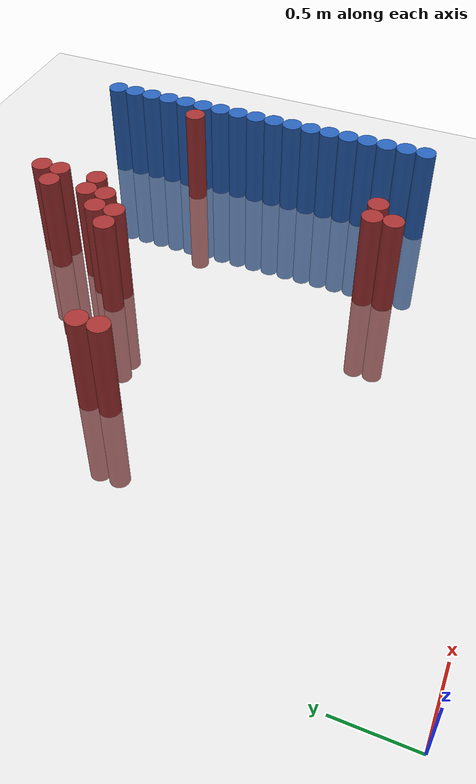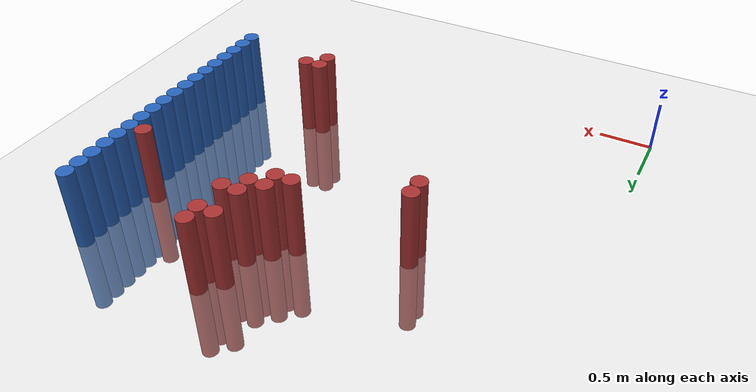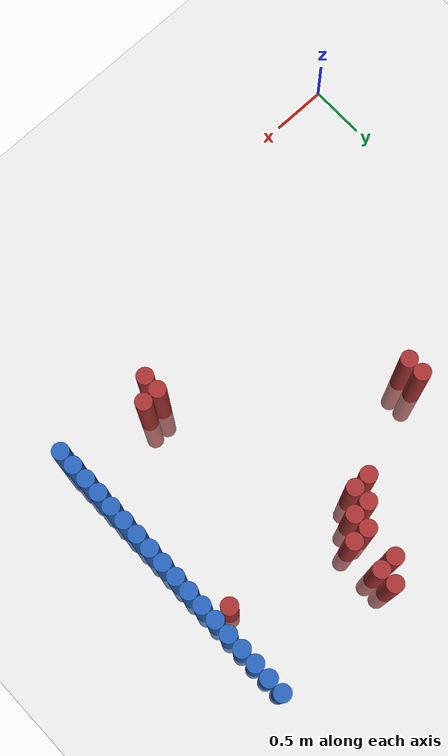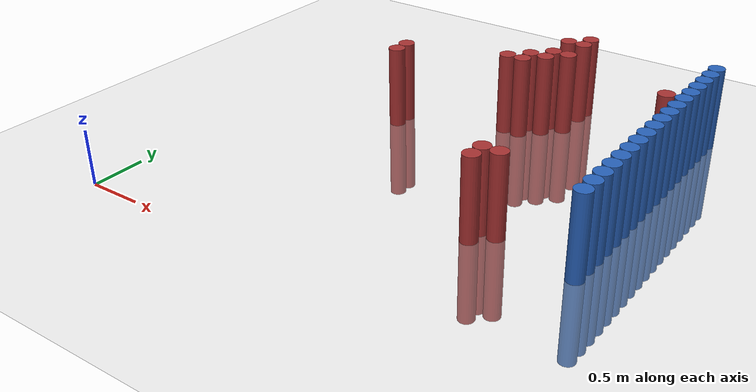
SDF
<sdf version="1.6">
 <world name="default">
  <model name="ground_plane">
   <static>1</static>
   <link name="link">
    <collision name="collision">
     <geometry><plane><normal>0 0 1</normal><size>100 100</size></plane></geometry>
     <surface><friction><ode><mu>100</mu><mu2>50</mu2></ode></friction></surface>
    </collision>
    <visual name="visual">
     <cast_shadows>0</cast_shadows>
     <geometry><plane><normal>0 0 1</normal><size>100 100</size></plane></geometry>
     <material>
      <script><uri>file://media/materials/scripts/gazebo.material</uri><name>Gazebo/Grey</name></script>
     </material>
    </visual>
   </link>
  </model>
  <model name="unit_cylinder_128">
   <static>1</static>
   <pose>3.925000 1.075000 0.000000 0.000000 0.000000 0.000000</pose>
   <link name="link">
    <inertial>
     <mass>1</mass>
     <inertia><ixx>0.145833</ixx><ixy>0</ixy><ixz>0</ixz><iyy>0.145833</iyy><iyz>0</iyz><izz>0.125</izz></inertia>
    </inertial>
    <collision name="collision">
     <geometry><cylinder><radius>0.075000</radius><length>1.5</length></cylinder></geometry>
    </collision>
    <visual name="visual">
     <geometry><cylinder><radius>0.075000</radius><length>1.5</length></cylinder></geometry>
     <material>
      <ambient>0.152000 0.379000 0.720000 1</ambient>
      <diffuse>0.152000 0.379000 0.720000 1</diffuse>
     </material>
     <material>
      <script><name>Gazebo/Grey</name><uri>file://media/materials/scripts/gazebo.material</uri></script>
     </material>
    </visual>
   </link>
  </model>
  <model name="unit_cylinder_130">
   <static>1</static>
   <pose>3.925000 1.225000 0.000000 0.000000 0.000000 0.000000</pose>
   <link name="link">
    <inertial>
     <mass>1</mass>
     <inertia><ixx>0.145833</ixx><ixy>0</ixy><ixz>0</ixz><iyy>0.145833</iyy><iyz>0</iyz><izz>0.125</izz></inertia>
    </inertial>
    <collision name="collision">
     <geometry><cylinder><radius>0.075000</radius><length>1.5</length></cylinder></geometry>
    </collision>
    <visual name="visual">
     <geometry><cylinder><radius>0.075000</radius><length>1.5</length></cylinder></geometry>
     <material>
      <ambient>0.152000 0.379000 0.720000 1</ambient>
      <diffuse>0.152000 0.379000 0.720000 1</diffuse>
     </material>
     <material>
      <script><name>Gazebo/Grey</name><uri>file://media/materials/scripts/gazebo.material</uri></script>
     </material>
    </visual>
   </link>
  </model>
  <model name="unit_cylinder_132">
   <static>1</static>
   <pose>3.925000 1.375000 0.000000 0.000000 0.000000 0.000000</pose>
   <link name="link">
    <inertial>
     <mass>1</mass>
     <inertia><ixx>0.145833</ixx><ixy>0</ixy><ixz>0</ixz><iyy>0.145833</iyy><iyz>0</iyz><izz>0.125</izz></inertia>
    </inertial>
    <collision name="collision">
     <geometry><cylinder><radius>0.075000</radius><length>1.5</length></cylinder></geometry>
    </collision>
    <visual name="visual">
     <geometry><cylinder><radius>0.075000</radius><length>1.5</length></cylinder></geometry>
     <material>
      <ambient>0.152000 0.379000 0.720000 1</ambient>
      <diffuse>0.152000 0.379000 0.720000 1</diffuse>
     </material>
     <material>
      <script><name>Gazebo/Grey</name><uri>file://media/materials/scripts/gazebo.material</uri></script>
     </material>
    </visual>
   </link>
  </model>
  <model name="unit_cylinder_134">
   <static>1</static>
   <pose>3.925000 1.525000 0.000000 0.000000 0.000000 0.000000</pose>
   <link name="link">
    <inertial>
     <mass>1</mass>
     <inertia><ixx>0.145833</ixx><ixy>0</ixy><ixz>0</ixz><iyy>0.145833</iyy><iyz>0</iyz><izz>0.125</izz></inertia>
    </inertial>
    <collision name="collision">
     <geometry><cylinder><radius>0.075000</radius><length>1.5</length></cylinder></geometry>
    </collision>
    <visual name="visual">
     <geometry><cylinder><radius>0.075000</radius><length>1.5</length></cylinder></geometry>
     <material>
      <ambient>0.152000 0.379000 0.720000 1</ambient>
      <diffuse>0.152000 0.379000 0.720000 1</diffuse>
     </material>
     <material>
      <script><name>Gazebo/Grey</name><uri>file://media/materials/scripts/gazebo.material</uri></script>
     </material>
    </visual>
   </link>
  </model>
  <model name="unit_cylinder_136">
   <static>1</static>
   <pose>3.925000 1.675000 0.000000 0.000000 0.000000 0.000000</pose>
   <link name="link">
    <inertial>
     <mass>1</mass>
     <inertia><ixx>0.145833</ixx><ixy>0</ixy><ixz>0</ixz><iyy>0.145833</iyy><iyz>0</iyz><izz>0.125</izz></inertia>
    </inertial>
    <collision name="collision">
     <geometry><cylinder><radius>0.075000</radius><length>1.5</length></cylinder></geometry>
    </collision>
    <visual name="visual">
     <geometry><cylinder><radius>0.075000</radius><length>1.5</length></cylinder></geometry>
     <material>
      <ambient>0.152000 0.379000 0.720000 1</ambient>
      <diffuse>0.152000 0.379000 0.720000 1</diffuse>
     </material>
     <material>
      <script><name>Gazebo/Grey</name><uri>file://media/materials/scripts/gazebo.material</uri></script>
     </material>
    </visual>
   </link>
  </model>
  <model name="unit_cylinder_138">
   <static>1</static>
   <pose>3.925000 1.825000 0.000000 0.000000 0.000000 0.000000</pose>
   <link name="link">
    <inertial>
     <mass>1</mass>
     <inertia><ixx>0.145833</ixx><ixy>0</ixy><ixz>0</ixz><iyy>0.145833</iyy><iyz>0</iyz><izz>0.125</izz></inertia>
    </inertial>
    <collision name="collision">
     <geometry><cylinder><radius>0.075000</radius><length>1.5</length></cylinder></geometry>
    </collision>
    <visual name="visual">
     <geometry><cylinder><radius>0.075000</radius><length>1.5</length></cylinder></geometry>
     <material>
      <ambient>0.152000 0.379000 0.720000 1</ambient>
      <diffuse>0.152000 0.379000 0.720000 1</diffuse>
     </material>
     <material>
      <script><name>Gazebo/Grey</name><uri>file://media/materials/scripts/gazebo.material</uri></script>
     </material>
    </visual>
   </link>
  </model>
  <model name="unit_cylinder_140">
   <static>1</static>
   <pose>3.925000 1.975000 0.000000 0.000000 0.000000 0.000000</pose>
   <link name="link">
    <inertial>
     <mass>1</mass>
     <inertia><ixx>0.145833</ixx><ixy>0</ixy><ixz>0</ixz><iyy>0.145833</iyy><iyz>0</iyz><izz>0.125</izz></inertia>
    </inertial>
    <collision name="collision">
     <geometry><cylinder><radius>0.075000</radius><length>1.5</length></cylinder></geometry>
    </collision>
    <visual name="visual">
     <geometry><cylinder><radius>0.075000</radius><length>1.5</length></cylinder></geometry>
     <material>
      <ambient>0.152000 0.379000 0.720000 1</ambient>
      <diffuse>0.152000 0.379000 0.720000 1</diffuse>
     </material>
     <material>
      <script><name>Gazebo/Grey</name><uri>file://media/materials/scripts/gazebo.material</uri></script>
     </material>
    </visual>
   </link>
  </model>
  <model name="unit_cylinder_142">
   <static>1</static>
   <pose>3.925000 2.125000 0.000000 0.000000 0.000000 0.000000</pose>
   <link name="link">
    <inertial>
     <mass>1</mass>
     <inertia><ixx>0.145833</ixx><ixy>0</ixy><ixz>0</ixz><iyy>0.145833</iyy><iyz>0</iyz><izz>0.125</izz></inertia>
    </inertial>
    <collision name="collision">
     <geometry><cylinder><radius>0.075000</radius><length>1.5</length></cylinder></geometry>
    </collision>
    <visual name="visual">
     <geometry><cylinder><radius>0.075000</radius><length>1.5</length></cylinder></geometry>
     <material>
      <ambient>0.152000 0.379000 0.720000 1</ambient>
      <diffuse>0.152000 0.379000 0.720000 1</diffuse>
     </material>
     <material>
      <script><name>Gazebo/Grey</name><uri>file://media/materials/scripts/gazebo.material</uri></script>
     </material>
    </visual>
   </link>
  </model>
  <model name="unit_cylinder_144">
   <static>1</static>
   <pose>3.925000 2.275000 0.000000 0.000000 0.000000 0.000000</pose>
   <link name="link">
    <inertial>
     <mass>1</mass>
     <inertia><ixx>0.145833</ixx><ixy>0</ixy><ixz>0</ixz><iyy>0.145833</iyy><iyz>0</iyz><izz>0.125</izz></inertia>
    </inertial>
    <collision name="collision">
     <geometry><cylinder><radius>0.075000</radius><length>1.5</length></cylinder></geometry>
    </collision>
    <visual name="visual">
     <geometry><cylinder><radius>0.075000</radius><length>1.5</length></cylinder></geometry>
     <material>
      <ambient>0.152000 0.379000 0.720000 1</ambient>
      <diffuse>0.152000 0.379000 0.720000 1</diffuse>
     </material>
     <material>
      <script><name>Gazebo/Grey</name><uri>file://media/materials/scripts/gazebo.material</uri></script>
     </material>
    </visual>
   </link>
  </model>
  <model name="unit_cylinder_146">
   <static>1</static>
   <pose>3.925000 2.425000 0.000000 0.000000 0.000000 0.000000</pose>
   <link name="link">
    <inertial>
     <mass>1</mass>
     <inertia><ixx>0.145833</ixx><ixy>0</ixy><ixz>0</ixz><iyy>0.145833</iyy><iyz>0</iyz><izz>0.125</izz></inertia>
    </inertial>
    <collision name="collision">
     <geometry><cylinder><radius>0.075000</radius><length>1.5</length></cylinder></geometry>
    </collision>
    <visual name="visual">
     <geometry><cylinder><radius>0.075000</radius><length>1.5</length></cylinder></geometry>
     <material>
      <ambient>0.152000 0.379000 0.720000 1</ambient>
      <diffuse>0.152000 0.379000 0.720000 1</diffuse>
     </material>
     <material>
      <script><name>Gazebo/Grey</name><uri>file://media/materials/scripts/gazebo.material</uri></script>
     </material>
    </visual>
   </link>
  </model>
  <model name="unit_cylinder_148">
   <static>1</static>
   <pose>3.925000 2.575000 0.000000 0.000000 0.000000 0.000000</pose>
   <link name="link">
    <inertial>
     <mass>1</mass>
     <inertia><ixx>0.145833</ixx><ixy>0</ixy><ixz>0</ixz><iyy>0.145833</iyy><iyz>0</iyz><izz>0.125</izz></inertia>
    </inertial>
    <collision name="collision">
     <geometry><cylinder><radius>0.075000</radius><length>1.5</length></cylinder></geometry>
    </collision>
    <visual name="visual">
     <geometry><cylinder><radius>0.075000</radius><length>1.5</length></cylinder></geometry>
     <material>
      <ambient>0.152000 0.379000 0.720000 1</ambient>
      <diffuse>0.152000 0.379000 0.720000 1</diffuse>
     </material>
     <material>
      <script><name>Gazebo/Grey</name><uri>file://media/materials/scripts/gazebo.material</uri></script>
     </material>
    </visual>
   </link>
  </model>
  <model name="unit_cylinder_150">
   <static>1</static>
   <pose>3.925000 2.725000 0.000000 0.000000 0.000000 0.000000</pose>
   <link name="link">
    <inertial>
     <mass>1</mass>
     <inertia><ixx>0.145833</ixx><ixy>0</ixy><ixz>0</ixz><iyy>0.145833</iyy><iyz>0</iyz><izz>0.125</izz></inertia>
    </inertial>
    <collision name="collision">
     <geometry><cylinder><radius>0.075000</radius><length>1.5</length></cylinder></geometry>
    </collision>
    <visual name="visual">
     <geometry><cylinder><radius>0.075000</radius><length>1.5</length></cylinder></geometry>
     <material>
      <ambient>0.152000 0.379000 0.720000 1</ambient>
      <diffuse>0.152000 0.379000 0.720000 1</diffuse>
     </material>
     <material>
      <script><name>Gazebo/Grey</name><uri>file://media/materials/scripts/gazebo.material</uri></script>
     </material>
    </visual>
   </link>
  </model>
  <model name="unit_cylinder_152">
   <static>1</static>
   <pose>3.925000 2.875000 0.000000 0.000000 0.000000 0.000000</pose>
   <link name="link">
    <inertial>
     <mass>1</mass>
     <inertia><ixx>0.145833</ixx><ixy>0</ixy><ixz>0</ixz><iyy>0.145833</iyy><iyz>0</iyz><izz>0.125</izz></inertia>
    </inertial>
    <collision name="collision">
     <geometry><cylinder><radius>0.075000</radius><length>1.5</length></cylinder></geometry>
    </collision>
    <visual name="visual">
     <geometry><cylinder><radius>0.075000</radius><length>1.5</length></cylinder></geometry>
     <material>
      <ambient>0.152000 0.379000 0.720000 1</ambient>
      <diffuse>0.152000 0.379000 0.720000 1</diffuse>
     </material>
     <material>
      <script><name>Gazebo/Grey</name><uri>file://media/materials/scripts/gazebo.material</uri></script>
     </material>
    </visual>
   </link>
  </model>
  <model name="unit_cylinder_154">
   <static>1</static>
   <pose>3.925000 3.025000 0.000000 0.000000 0.000000 0.000000</pose>
   <link name="link">
    <inertial>
     <mass>1</mass>
     <inertia><ixx>0.145833</ixx><ixy>0</ixy><ixz>0</ixz><iyy>0.145833</iyy><iyz>0</iyz><izz>0.125</izz></inertia>
    </inertial>
    <collision name="collision">
     <geometry><cylinder><radius>0.075000</radius><length>1.5</length></cylinder></geometry>
    </collision>
    <visual name="visual">
     <geometry><cylinder><radius>0.075000</radius><length>1.5</length></cylinder></geometry>
     <material>
      <ambient>0.152000 0.379000 0.720000 1</ambient>
      <diffuse>0.152000 0.379000 0.720000 1</diffuse>
     </material>
     <material>
      <script><name>Gazebo/Grey</name><uri>file://media/materials/scripts/gazebo.material</uri></script>
     </material>
    </visual>
   </link>
  </model>
  <model name="unit_cylinder_156">
   <static>1</static>
   <pose>3.925000 3.175000 0.000000 0.000000 0.000000 0.000000</pose>
   <link name="link">
    <inertial>
     <mass>1</mass>
     <inertia><ixx>0.145833</ixx><ixy>0</ixy><ixz>0</ixz><iyy>0.145833</iyy><iyz>0</iyz><izz>0.125</izz></inertia>
    </inertial>
    <collision name="collision">
     <geometry><cylinder><radius>0.075000</radius><length>1.5</length></cylinder></geometry>
    </collision>
    <visual name="visual">
     <geometry><cylinder><radius>0.075000</radius><length>1.5</length></cylinder></geometry>
     <material>
      <ambient>0.152000 0.379000 0.720000 1</ambient>
      <diffuse>0.152000 0.379000 0.720000 1</diffuse>
     </material>
     <material>
      <script><name>Gazebo/Grey</name><uri>file://media/materials/scripts/gazebo.material</uri></script>
     </material>
    </visual>
   </link>
  </model>
  <model name="unit_cylinder_158">
   <static>1</static>
   <pose>3.925000 3.325000 0.000000 0.000000 0.000000 0.000000</pose>
   <link name="link">
    <inertial>
     <mass>1</mass>
     <inertia><ixx>0.145833</ixx><ixy>0</ixy><ixz>0</ixz><iyy>0.145833</iyy><iyz>0</iyz><izz>0.125</izz></inertia>
    </inertial>
    <collision name="collision">
     <geometry><cylinder><radius>0.075000</radius><length>1.5</length></cylinder></geometry>
    </collision>
    <visual name="visual">
     <geometry><cylinder><radius>0.075000</radius><length>1.5</length></cylinder></geometry>
     <material>
      <ambient>0.152000 0.379000 0.720000 1</ambient>
      <diffuse>0.152000 0.379000 0.720000 1</diffuse>
     </material>
     <material>
      <script><name>Gazebo/Grey</name><uri>file://media/materials/scripts/gazebo.material</uri></script>
     </material>
    </visual>
   </link>
  </model>
  <model name="unit_cylinder_160">
   <static>1</static>
   <pose>3.925000 3.475000 0.000000 0.000000 0.000000 0.000000</pose>
   <link name="link">
    <inertial>
     <mass>1</mass>
     <inertia><ixx>0.145833</ixx><ixy>0</ixy><ixz>0</ixz><iyy>0.145833</iyy><iyz>0</iyz><izz>0.125</izz></inertia>
    </inertial>
    <collision name="collision">
     <geometry><cylinder><radius>0.075000</radius><length>1.5</length></cylinder></geometry>
    </collision>
    <visual name="visual">
     <geometry><cylinder><radius>0.075000</radius><length>1.5</length></cylinder></geometry>
     <material>
      <ambient>0.152000 0.379000 0.720000 1</ambient>
      <diffuse>0.152000 0.379000 0.720000 1</diffuse>
     </material>
     <material>
      <script><name>Gazebo/Grey</name><uri>file://media/materials/scripts/gazebo.material</uri></script>
     </material>
    </visual>
   </link>
  </model>
  <model name="unit_cylinder_162">
   <static>1</static>
   <pose>3.925000 3.625000 0.000000 0.000000 0.000000 0.000000</pose>
   <link name="link">
    <inertial>
     <mass>1</mass>
     <inertia><ixx>0.145833</ixx><ixy>0</ixy><ixz>0</ixz><iyy>0.145833</iyy><iyz>0</iyz><izz>0.125</izz></inertia>
    </inertial>
    <collision name="collision">
     <geometry><cylinder><radius>0.075000</radius><length>1.5</length></cylinder></geometry>
    </collision>
    <visual name="visual">
     <geometry><cylinder><radius>0.075000</radius><length>1.5</length></cylinder></geometry>
     <material>
      <ambient>0.152000 0.379000 0.720000 1</ambient>
      <diffuse>0.152000 0.379000 0.720000 1</diffuse>
     </material>
     <material>
      <script><name>Gazebo/Grey</name><uri>file://media/materials/scripts/gazebo.material</uri></script>
     </material>
    </visual>
   </link>
  </model>
  <model name="unit_cylinder_389">
   <static>1</static>
   <pose>1.375000 2.425000 0.000000 0.000000 0.000000 0.000000</pose>
   <link name="link">
    <inertial>
     <mass>1</mass>
     <inertia><ixx>0.145833</ixx><ixy>0</ixy><ixz>0</ixz><iyy>0.145833</iyy><iyz>0</iyz><izz>0.125</izz></inertia>
    </inertial>
    <collision name="collision">
     <geometry><cylinder><radius>0.075000</radius><length>1.5</length></cylinder></geometry>
    </collision>
    <visual name="visual">
     <geometry><cylinder><radius>0.075000</radius><length>1.5</length></cylinder></geometry>
     <material>
      <ambient>0.648000 0.192000 0.192000 1</ambient>
      <diffuse>0.648000 0.192000 0.192000 1</diffuse>
     </material>
     <material>
      <script><name>Gazebo/Grey</name><uri>file://media/materials/scripts/gazebo.material</uri></script>
     </material>
    </visual>
   </link>
  </model>
  <model name="unit_cylinder_390">
   <static>1</static>
   <pose>1.375000 2.575000 0.000000 0.000000 0.000000 0.000000</pose>
   <link name="link">
    <inertial>
     <mass>1</mass>
     <inertia><ixx>0.145833</ixx><ixy>0</ixy><ixz>0</ixz><iyy>0.145833</iyy><iyz>0</iyz><izz>0.125</izz></inertia>
    </inertial>
    <collision name="collision">
     <geometry><cylinder><radius>0.075000</radius><length>1.5</length></cylinder></geometry>
    </collision>
    <visual name="visual">
     <geometry><cylinder><radius>0.075000</radius><length>1.5</length></cylinder></geometry>
     <material>
      <ambient>0.648000 0.192000 0.192000 1</ambient>
      <diffuse>0.648000 0.192000 0.192000 1</diffuse>
     </material>
     <material>
      <script><name>Gazebo/Grey</name><uri>file://media/materials/scripts/gazebo.material</uri></script>
     </material>
    </visual>
   </link>
  </model>
  <model name="unit_cylinder_395">
   <static>1</static>
   <pose>2.275000 2.875000 0.000000 0.000000 0.000000 0.000000</pose>
   <link name="link">
    <inertial>
     <mass>1</mass>
     <inertia><ixx>0.145833</ixx><ixy>0</ixy><ixz>0</ixz><iyy>0.145833</iyy><iyz>0</iyz><izz>0.125</izz></inertia>
    </inertial>
    <collision name="collision">
     <geometry><cylinder><radius>0.075000</radius><length>1.5</length></cylinder></geometry>
    </collision>
    <visual name="visual">
     <geometry><cylinder><radius>0.075000</radius><length>1.5</length></cylinder></geometry>
     <material>
      <ambient>0.648000 0.192000 0.192000 1</ambient>
      <diffuse>0.648000 0.192000 0.192000 1</diffuse>
     </material>
     <material>
      <script><name>Gazebo/Grey</name><uri>file://media/materials/scripts/gazebo.material</uri></script>
     </material>
    </visual>
   </link>
  </model>
  <model name="unit_cylinder_402">
   <static>1</static>
   <pose>2.425000 2.875000 0.000000 0.000000 0.000000 0.000000</pose>
   <link name="link">
    <inertial>
     <mass>1</mass>
     <inertia><ixx>0.145833</ixx><ixy>0</ixy><ixz>0</ixz><iyy>0.145833</iyy><iyz>0</iyz><izz>0.125</izz></inertia>
    </inertial>
    <collision name="collision">
     <geometry><cylinder><radius>0.075000</radius><length>1.5</length></cylinder></geometry>
    </collision>
    <visual name="visual">
     <geometry><cylinder><radius>0.075000</radius><length>1.5</length></cylinder></geometry>
     <material>
      <ambient>0.648000 0.192000 0.192000 1</ambient>
      <diffuse>0.648000 0.192000 0.192000 1</diffuse>
     </material>
     <material>
      <script><name>Gazebo/Grey</name><uri>file://media/materials/scripts/gazebo.material</uri></script>
     </material>
    </visual>
   </link>
  </model>
  <model name="unit_cylinder_403">
   <static>1</static>
   <pose>2.425000 3.025000 0.000000 0.000000 0.000000 0.000000</pose>
   <link name="link">
    <inertial>
     <mass>1</mass>
     <inertia><ixx>0.145833</ixx><ixy>0</ixy><ixz>0</ixz><iyy>0.145833</iyy><iyz>0</iyz><izz>0.125</izz></inertia>
    </inertial>
    <collision name="collision">
     <geometry><cylinder><radius>0.075000</radius><length>1.5</length></cylinder></geometry>
    </collision>
    <visual name="visual">
     <geometry><cylinder><radius>0.075000</radius><length>1.5</length></cylinder></geometry>
     <material>
      <ambient>0.648000 0.192000 0.192000 1</ambient>
      <diffuse>0.648000 0.192000 0.192000 1</diffuse>
     </material>
     <material>
      <script><name>Gazebo/Grey</name><uri>file://media/materials/scripts/gazebo.material</uri></script>
     </material>
    </visual>
   </link>
  </model>
  <model name="unit_cylinder_407">
   <static>1</static>
   <pose>2.575000 3.025000 0.000000 0.000000 0.000000 0.000000</pose>
   <link name="link">
    <inertial>
     <mass>1</mass>
     <inertia><ixx>0.145833</ixx><ixy>0</ixy><ixz>0</ixz><iyy>0.145833</iyy><iyz>0</iyz><izz>0.125</izz></inertia>
    </inertial>
    <collision name="collision">
     <geometry><cylinder><radius>0.075000</radius><length>1.5</length></cylinder></geometry>
    </collision>
    <visual name="visual">
     <geometry><cylinder><radius>0.075000</radius><length>1.5</length></cylinder></geometry>
     <material>
      <ambient>0.648000 0.192000 0.192000 1</ambient>
      <diffuse>0.648000 0.192000 0.192000 1</diffuse>
     </material>
     <material>
      <script><name>Gazebo/Grey</name><uri>file://media/materials/scripts/gazebo.material</uri></script>
     </material>
    </visual>
   </link>
  </model>
  <model name="unit_cylinder_408">
   <static>1</static>
   <pose>2.575000 3.175000 0.000000 0.000000 0.000000 0.000000</pose>
   <link name="link">
    <inertial>
     <mass>1</mass>
     <inertia><ixx>0.145833</ixx><ixy>0</ixy><ixz>0</ixz><iyy>0.145833</iyy><iyz>0</iyz><izz>0.125</izz></inertia>
    </inertial>
    <collision name="collision">
     <geometry><cylinder><radius>0.075000</radius><length>1.5</length></cylinder></geometry>
    </collision>
    <visual name="visual">
     <geometry><cylinder><radius>0.075000</radius><length>1.5</length></cylinder></geometry>
     <material>
      <ambient>0.648000 0.192000 0.192000 1</ambient>
      <diffuse>0.648000 0.192000 0.192000 1</diffuse>
     </material>
     <material>
      <script><name>Gazebo/Grey</name><uri>file://media/materials/scripts/gazebo.material</uri></script>
     </material>
    </visual>
   </link>
  </model>
  <model name="unit_cylinder_409">
   <static>1</static>
   <pose>2.575000 3.475000 0.000000 0.000000 0.000000 0.000000</pose>
   <link name="link">
    <inertial>
     <mass>1</mass>
     <inertia><ixx>0.145833</ixx><ixy>0</ixy><ixz>0</ixz><iyy>0.145833</iyy><iyz>0</iyz><izz>0.125</izz></inertia>
    </inertial>
    <collision name="collision">
     <geometry><cylinder><radius>0.075000</radius><length>1.5</length></cylinder></geometry>
    </collision>
    <visual name="visual">
     <geometry><cylinder><radius>0.075000</radius><length>1.5</length></cylinder></geometry>
     <material>
      <ambient>0.648000 0.192000 0.192000 1</ambient>
      <diffuse>0.648000 0.192000 0.192000 1</diffuse>
     </material>
     <material>
      <script><name>Gazebo/Grey</name><uri>file://media/materials/scripts/gazebo.material</uri></script>
     </material>
    </visual>
   </link>
  </model>
  <model name="unit_cylinder_412">
   <static>1</static>
   <pose>2.725000 3.175000 0.000000 0.000000 0.000000 0.000000</pose>
   <link name="link">
    <inertial>
     <mass>1</mass>
     <inertia><ixx>0.145833</ixx><ixy>0</ixy><ixz>0</ixz><iyy>0.145833</iyy><iyz>0</iyz><izz>0.125</izz></inertia>
    </inertial>
    <collision name="collision">
     <geometry><cylinder><radius>0.075000</radius><length>1.5</length></cylinder></geometry>
    </collision>
    <visual name="visual">
     <geometry><cylinder><radius>0.075000</radius><length>1.5</length></cylinder></geometry>
     <material>
      <ambient>0.648000 0.192000 0.192000 1</ambient>
      <diffuse>0.648000 0.192000 0.192000 1</diffuse>
     </material>
     <material>
      <script><name>Gazebo/Grey</name><uri>file://media/materials/scripts/gazebo.material</uri></script>
     </material>
    </visual>
   </link>
  </model>
  <model name="unit_cylinder_413">
   <static>1</static>
   <pose>2.725000 3.475000 0.000000 0.000000 0.000000 0.000000</pose>
   <link name="link">
    <inertial>
     <mass>1</mass>
     <inertia><ixx>0.145833</ixx><ixy>0</ixy><ixz>0</ixz><iyy>0.145833</iyy><iyz>0</iyz><izz>0.125</izz></inertia>
    </inertial>
    <collision name="collision">
     <geometry><cylinder><radius>0.075000</radius><length>1.5</length></cylinder></geometry>
    </collision>
    <visual name="visual">
     <geometry><cylinder><radius>0.075000</radius><length>1.5</length></cylinder></geometry>
     <material>
      <ambient>0.648000 0.192000 0.192000 1</ambient>
      <diffuse>0.648000 0.192000 0.192000 1</diffuse>
     </material>
     <material>
      <script><name>Gazebo/Grey</name><uri>file://media/materials/scripts/gazebo.material</uri></script>
     </material>
    </visual>
   </link>
  </model>
  <model name="unit_cylinder_414">
   <static>1</static>
   <pose>2.725000 3.625000 0.000000 0.000000 0.000000 0.000000</pose>
   <link name="link">
    <inertial>
     <mass>1</mass>
     <inertia><ixx>0.145833</ixx><ixy>0</ixy><ixz>0</ixz><iyy>0.145833</iyy><iyz>0</iyz><izz>0.125</izz></inertia>
    </inertial>
    <collision name="collision">
     <geometry><cylinder><radius>0.075000</radius><length>1.5</length></cylinder></geometry>
    </collision>
    <visual name="visual">
     <geometry><cylinder><radius>0.075000</radius><length>1.5</length></cylinder></geometry>
     <material>
      <ambient>0.648000 0.192000 0.192000 1</ambient>
      <diffuse>0.648000 0.192000 0.192000 1</diffuse>
     </material>
     <material>
      <script><name>Gazebo/Grey</name><uri>file://media/materials/scripts/gazebo.material</uri></script>
     </material>
    </visual>
   </link>
  </model>
  <model name="unit_cylinder_420">
   <static>1</static>
   <pose>3.025000 1.075000 0.000000 0.000000 0.000000 0.000000</pose>
   <link name="link">
    <inertial>
     <mass>1</mass>
     <inertia><ixx>0.145833</ixx><ixy>0</ixy><ixz>0</ixz><iyy>0.145833</iyy><iyz>0</iyz><izz>0.125</izz></inertia>
    </inertial>
    <collision name="collision">
     <geometry><cylinder><radius>0.075000</radius><length>1.5</length></cylinder></geometry>
    </collision>
    <visual name="visual">
     <geometry><cylinder><radius>0.075000</radius><length>1.5</length></cylinder></geometry>
     <material>
      <ambient>0.648000 0.192000 0.192000 1</ambient>
      <diffuse>0.648000 0.192000 0.192000 1</diffuse>
     </material>
     <material>
      <script><name>Gazebo/Grey</name><uri>file://media/materials/scripts/gazebo.material</uri></script>
     </material>
    </visual>
   </link>
  </model>
  <model name="unit_cylinder_421">
   <static>1</static>
   <pose>3.025000 1.225000 0.000000 0.000000 0.000000 0.000000</pose>
   <link name="link">
    <inertial>
     <mass>1</mass>
     <inertia><ixx>0.145833</ixx><ixy>0</ixy><ixz>0</ixz><iyy>0.145833</iyy><iyz>0</iyz><izz>0.125</izz></inertia>
    </inertial>
    <collision name="collision">
     <geometry><cylinder><radius>0.075000</radius><length>1.5</length></cylinder></geometry>
    </collision>
    <visual name="visual">
     <geometry><cylinder><radius>0.075000</radius><length>1.5</length></cylinder></geometry>
     <material>
      <ambient>0.648000 0.192000 0.192000 1</ambient>
      <diffuse>0.648000 0.192000 0.192000 1</diffuse>
     </material>
     <material>
      <script><name>Gazebo/Grey</name><uri>file://media/materials/scripts/gazebo.material</uri></script>
     </material>
    </visual>
   </link>
  </model>
  <model name="unit_cylinder_423">
   <static>1</static>
   <pose>3.175000 1.225000 0.000000 0.000000 0.000000 0.000000</pose>
   <link name="link">
    <inertial>
     <mass>1</mass>
     <inertia><ixx>0.145833</ixx><ixy>0</ixy><ixz>0</ixz><iyy>0.145833</iyy><iyz>0</iyz><izz>0.125</izz></inertia>
    </inertial>
    <collision name="collision">
     <geometry><cylinder><radius>0.075000</radius><length>1.5</length></cylinder></geometry>
    </collision>
    <visual name="visual">
     <geometry><cylinder><radius>0.075000</radius><length>1.5</length></cylinder></geometry>
     <material>
      <ambient>0.648000 0.192000 0.192000 1</ambient>
      <diffuse>0.648000 0.192000 0.192000 1</diffuse>
     </material>
     <material>
      <script><name>Gazebo/Grey</name><uri>file://media/materials/scripts/gazebo.material</uri></script>
     </material>
    </visual>
   </link>
  </model>
  <model name="unit_cylinder_444">
   <static>1</static>
   <pose>3.775000 2.875000 0.000000 0.000000 0.000000 0.000000</pose>
   <link name="link">
    <inertial>
     <mass>1</mass>
     <inertia><ixx>0.145833</ixx><ixy>0</ixy><ixz>0</ixz><iyy>0.145833</iyy><iyz>0</iyz><izz>0.125</izz></inertia>
    </inertial>
    <collision name="collision">
     <geometry><cylinder><radius>0.075000</radius><length>1.5</length></cylinder></geometry>
    </collision>
    <visual name="visual">
     <geometry><cylinder><radius>0.075000</radius><length>1.5</length></cylinder></geometry>
     <material>
      <ambient>0.648000 0.192000 0.192000 1</ambient>
      <diffuse>0.648000 0.192000 0.192000 1</diffuse>
     </material>
     <material>
      <script><name>Gazebo/Grey</name><uri>file://media/materials/scripts/gazebo.material</uri></script>
     </material>
    </visual>
   </link>
  </model>
  <model name="unit_cylinder_470">
   <static>1</static>
   <pose>3.925000 1.075000 0.000000 0.000000 0.000000 0.000000</pose>
   <link name="link">
    <inertial>
     <mass>1</mass>
     <inertia><ixx>0.145833</ixx><ixy>0</ixy><ixz>0</ixz><iyy>0.145833</iyy><iyz>0</iyz><izz>0.125</izz></inertia>
    </inertial>
    <collision name="collision">
     <geometry><cylinder><radius>0.075000</radius><length>1.5</length></cylinder></geometry>
    </collision>
    <visual name="visual">
     <geometry><cylinder><radius>0.075000</radius><length>1.5</length></cylinder></geometry>
     <material>
      <ambient>0.152000 0.379000 0.720000 1</ambient>
      <diffuse>0.152000 0.379000 0.720000 1</diffuse>
     </material>
     <material>
      <script><name>Gazebo/Grey</name><uri>file://media/materials/scripts/gazebo.material</uri></script>
     </material>
    </visual>
   </link>
  </model>
  <model name="unit_cylinder_471">
   <static>1</static>
   <pose>3.925000 1.225000 0.000000 0.000000 0.000000 0.000000</pose>
   <link name="link">
    <inertial>
     <mass>1</mass>
     <inertia><ixx>0.145833</ixx><ixy>0</ixy><ixz>0</ixz><iyy>0.145833</iyy><iyz>0</iyz><izz>0.125</izz></inertia>
    </inertial>
    <collision name="collision">
     <geometry><cylinder><radius>0.075000</radius><length>1.5</length></cylinder></geometry>
    </collision>
    <visual name="visual">
     <geometry><cylinder><radius>0.075000</radius><length>1.5</length></cylinder></geometry>
     <material>
      <ambient>0.152000 0.379000 0.720000 1</ambient>
      <diffuse>0.152000 0.379000 0.720000 1</diffuse>
     </material>
     <material>
      <script><name>Gazebo/Grey</name><uri>file://media/materials/scripts/gazebo.material</uri></script>
     </material>
    </visual>
   </link>
  </model>
  <model name="unit_cylinder_472">
   <static>1</static>
   <pose>3.925000 1.375000 0.000000 0.000000 0.000000 0.000000</pose>
   <link name="link">
    <inertial>
     <mass>1</mass>
     <inertia><ixx>0.145833</ixx><ixy>0</ixy><ixz>0</ixz><iyy>0.145833</iyy><iyz>0</iyz><izz>0.125</izz></inertia>
    </inertial>
    <collision name="collision">
     <geometry><cylinder><radius>0.075000</radius><length>1.5</length></cylinder></geometry>
    </collision>
    <visual name="visual">
     <geometry><cylinder><radius>0.075000</radius><length>1.5</length></cylinder></geometry>
     <material>
      <ambient>0.152000 0.379000 0.720000 1</ambient>
      <diffuse>0.152000 0.379000 0.720000 1</diffuse>
     </material>
     <material>
      <script><name>Gazebo/Grey</name><uri>file://media/materials/scripts/gazebo.material</uri></script>
     </material>
    </visual>
   </link>
  </model>
  <model name="unit_cylinder_473">
   <static>1</static>
   <pose>3.925000 1.525000 0.000000 0.000000 0.000000 0.000000</pose>
   <link name="link">
    <inertial>
     <mass>1</mass>
     <inertia><ixx>0.145833</ixx><ixy>0</ixy><ixz>0</ixz><iyy>0.145833</iyy><iyz>0</iyz><izz>0.125</izz></inertia>
    </inertial>
    <collision name="collision">
     <geometry><cylinder><radius>0.075000</radius><length>1.5</length></cylinder></geometry>
    </collision>
    <visual name="visual">
     <geometry><cylinder><radius>0.075000</radius><length>1.5</length></cylinder></geometry>
     <material>
      <ambient>0.152000 0.379000 0.720000 1</ambient>
      <diffuse>0.152000 0.379000 0.720000 1</diffuse>
     </material>
     <material>
      <script><name>Gazebo/Grey</name><uri>file://media/materials/scripts/gazebo.material</uri></script>
     </material>
    </visual>
   </link>
  </model>
  <model name="unit_cylinder_474">
   <static>1</static>
   <pose>3.925000 1.675000 0.000000 0.000000 0.000000 0.000000</pose>
   <link name="link">
    <inertial>
     <mass>1</mass>
     <inertia><ixx>0.145833</ixx><ixy>0</ixy><ixz>0</ixz><iyy>0.145833</iyy><iyz>0</iyz><izz>0.125</izz></inertia>
    </inertial>
    <collision name="collision">
     <geometry><cylinder><radius>0.075000</radius><length>1.5</length></cylinder></geometry>
    </collision>
    <visual name="visual">
     <geometry><cylinder><radius>0.075000</radius><length>1.5</length></cylinder></geometry>
     <material>
      <ambient>0.152000 0.379000 0.720000 1</ambient>
      <diffuse>0.152000 0.379000 0.720000 1</diffuse>
     </material>
     <material>
      <script><name>Gazebo/Grey</name><uri>file://media/materials/scripts/gazebo.material</uri></script>
     </material>
    </visual>
   </link>
  </model>
  <model name="unit_cylinder_475">
   <static>1</static>
   <pose>3.925000 1.825000 0.000000 0.000000 0.000000 0.000000</pose>
   <link name="link">
    <inertial>
     <mass>1</mass>
     <inertia><ixx>0.145833</ixx><ixy>0</ixy><ixz>0</ixz><iyy>0.145833</iyy><iyz>0</iyz><izz>0.125</izz></inertia>
    </inertial>
    <collision name="collision">
     <geometry><cylinder><radius>0.075000</radius><length>1.5</length></cylinder></geometry>
    </collision>
    <visual name="visual">
     <geometry><cylinder><radius>0.075000</radius><length>1.5</length></cylinder></geometry>
     <material>
      <ambient>0.152000 0.379000 0.720000 1</ambient>
      <diffuse>0.152000 0.379000 0.720000 1</diffuse>
     </material>
     <material>
      <script><name>Gazebo/Grey</name><uri>file://media/materials/scripts/gazebo.material</uri></script>
     </material>
    </visual>
   </link>
  </model>
  <model name="unit_cylinder_476">
   <static>1</static>
   <pose>3.925000 1.975000 0.000000 0.000000 0.000000 0.000000</pose>
   <link name="link">
    <inertial>
     <mass>1</mass>
     <inertia><ixx>0.145833</ixx><ixy>0</ixy><ixz>0</ixz><iyy>0.145833</iyy><iyz>0</iyz><izz>0.125</izz></inertia>
    </inertial>
    <collision name="collision">
     <geometry><cylinder><radius>0.075000</radius><length>1.5</length></cylinder></geometry>
    </collision>
    <visual name="visual">
     <geometry><cylinder><radius>0.075000</radius><length>1.5</length></cylinder></geometry>
     <material>
      <ambient>0.152000 0.379000 0.720000 1</ambient>
      <diffuse>0.152000 0.379000 0.720000 1</diffuse>
     </material>
     <material>
      <script><name>Gazebo/Grey</name><uri>file://media/materials/scripts/gazebo.material</uri></script>
     </material>
    </visual>
   </link>
  </model>
  <model name="unit_cylinder_477">
   <static>1</static>
   <pose>3.925000 2.125000 0.000000 0.000000 0.000000 0.000000</pose>
   <link name="link">
    <inertial>
     <mass>1</mass>
     <inertia><ixx>0.145833</ixx><ixy>0</ixy><ixz>0</ixz><iyy>0.145833</iyy><iyz>0</iyz><izz>0.125</izz></inertia>
    </inertial>
    <collision name="collision">
     <geometry><cylinder><radius>0.075000</radius><length>1.5</length></cylinder></geometry>
    </collision>
    <visual name="visual">
     <geometry><cylinder><radius>0.075000</radius><length>1.5</length></cylinder></geometry>
     <material>
      <ambient>0.152000 0.379000 0.720000 1</ambient>
      <diffuse>0.152000 0.379000 0.720000 1</diffuse>
     </material>
     <material>
      <script><name>Gazebo/Grey</name><uri>file://media/materials/scripts/gazebo.material</uri></script>
     </material>
    </visual>
   </link>
  </model>
  <model name="unit_cylinder_478">
   <static>1</static>
   <pose>3.925000 2.275000 0.000000 0.000000 0.000000 0.000000</pose>
   <link name="link">
    <inertial>
     <mass>1</mass>
     <inertia><ixx>0.145833</ixx><ixy>0</ixy><ixz>0</ixz><iyy>0.145833</iyy><iyz>0</iyz><izz>0.125</izz></inertia>
    </inertial>
    <collision name="collision">
     <geometry><cylinder><radius>0.075000</radius><length>1.5</length></cylinder></geometry>
    </collision>
    <visual name="visual">
     <geometry><cylinder><radius>0.075000</radius><length>1.5</length></cylinder></geometry>
     <material>
      <ambient>0.152000 0.379000 0.720000 1</ambient>
      <diffuse>0.152000 0.379000 0.720000 1</diffuse>
     </material>
     <material>
      <script><name>Gazebo/Grey</name><uri>file://media/materials/scripts/gazebo.material</uri></script>
     </material>
    </visual>
   </link>
  </model>
  <model name="unit_cylinder_479">
   <static>1</static>
   <pose>3.925000 2.425000 0.000000 0.000000 0.000000 0.000000</pose>
   <link name="link">
    <inertial>
     <mass>1</mass>
     <inertia><ixx>0.145833</ixx><ixy>0</ixy><ixz>0</ixz><iyy>0.145833</iyy><iyz>0</iyz><izz>0.125</izz></inertia>
    </inertial>
    <collision name="collision">
     <geometry><cylinder><radius>0.075000</radius><length>1.5</length></cylinder></geometry>
    </collision>
    <visual name="visual">
     <geometry><cylinder><radius>0.075000</radius><length>1.5</length></cylinder></geometry>
     <material>
      <ambient>0.152000 0.379000 0.720000 1</ambient>
      <diffuse>0.152000 0.379000 0.720000 1</diffuse>
     </material>
     <material>
      <script><name>Gazebo/Grey</name><uri>file://media/materials/scripts/gazebo.material</uri></script>
     </material>
    </visual>
   </link>
  </model>
  <model name="unit_cylinder_480">
   <static>1</static>
   <pose>3.925000 2.575000 0.000000 0.000000 0.000000 0.000000</pose>
   <link name="link">
    <inertial>
     <mass>1</mass>
     <inertia><ixx>0.145833</ixx><ixy>0</ixy><ixz>0</ixz><iyy>0.145833</iyy><iyz>0</iyz><izz>0.125</izz></inertia>
    </inertial>
    <collision name="collision">
     <geometry><cylinder><radius>0.075000</radius><length>1.5</length></cylinder></geometry>
    </collision>
    <visual name="visual">
     <geometry><cylinder><radius>0.075000</radius><length>1.5</length></cylinder></geometry>
     <material>
      <ambient>0.152000 0.379000 0.720000 1</ambient>
      <diffuse>0.152000 0.379000 0.720000 1</diffuse>
     </material>
     <material>
      <script><name>Gazebo/Grey</name><uri>file://media/materials/scripts/gazebo.material</uri></script>
     </material>
    </visual>
   </link>
  </model>
  <model name="unit_cylinder_481">
   <static>1</static>
   <pose>3.925000 2.725000 0.000000 0.000000 0.000000 0.000000</pose>
   <link name="link">
    <inertial>
     <mass>1</mass>
     <inertia><ixx>0.145833</ixx><ixy>0</ixy><ixz>0</ixz><iyy>0.145833</iyy><iyz>0</iyz><izz>0.125</izz></inertia>
    </inertial>
    <collision name="collision">
     <geometry><cylinder><radius>0.075000</radius><length>1.5</length></cylinder></geometry>
    </collision>
    <visual name="visual">
     <geometry><cylinder><radius>0.075000</radius><length>1.5</length></cylinder></geometry>
     <material>
      <ambient>0.152000 0.379000 0.720000 1</ambient>
      <diffuse>0.152000 0.379000 0.720000 1</diffuse>
     </material>
     <material>
      <script><name>Gazebo/Grey</name><uri>file://media/materials/scripts/gazebo.material</uri></script>
     </material>
    </visual>
   </link>
  </model>
  <model name="unit_cylinder_482">
   <static>1</static>
   <pose>3.925000 2.875000 0.000000 0.000000 0.000000 0.000000</pose>
   <link name="link">
    <inertial>
     <mass>1</mass>
     <inertia><ixx>0.145833</ixx><ixy>0</ixy><ixz>0</ixz><iyy>0.145833</iyy><iyz>0</iyz><izz>0.125</izz></inertia>
    </inertial>
    <collision name="collision">
     <geometry><cylinder><radius>0.075000</radius><length>1.5</length></cylinder></geometry>
    </collision>
    <visual name="visual">
     <geometry><cylinder><radius>0.075000</radius><length>1.5</length></cylinder></geometry>
     <material>
      <ambient>0.152000 0.379000 0.720000 1</ambient>
      <diffuse>0.152000 0.379000 0.720000 1</diffuse>
     </material>
     <material>
      <script><name>Gazebo/Grey</name><uri>file://media/materials/scripts/gazebo.material</uri></script>
     </material>
    </visual>
   </link>
  </model>
  <model name="unit_cylinder_483">
   <static>1</static>
   <pose>3.925000 3.025000 0.000000 0.000000 0.000000 0.000000</pose>
   <link name="link">
    <inertial>
     <mass>1</mass>
     <inertia><ixx>0.145833</ixx><ixy>0</ixy><ixz>0</ixz><iyy>0.145833</iyy><iyz>0</iyz><izz>0.125</izz></inertia>
    </inertial>
    <collision name="collision">
     <geometry><cylinder><radius>0.075000</radius><length>1.5</length></cylinder></geometry>
    </collision>
    <visual name="visual">
     <geometry><cylinder><radius>0.075000</radius><length>1.5</length></cylinder></geometry>
     <material>
      <ambient>0.152000 0.379000 0.720000 1</ambient>
      <diffuse>0.152000 0.379000 0.720000 1</diffuse>
     </material>
     <material>
      <script><name>Gazebo/Grey</name><uri>file://media/materials/scripts/gazebo.material</uri></script>
     </material>
    </visual>
   </link>
  </model>
  <model name="unit_cylinder_484">
   <static>1</static>
   <pose>3.925000 3.175000 0.000000 0.000000 0.000000 0.000000</pose>
   <link name="link">
    <inertial>
     <mass>1</mass>
     <inertia><ixx>0.145833</ixx><ixy>0</ixy><ixz>0</ixz><iyy>0.145833</iyy><iyz>0</iyz><izz>0.125</izz></inertia>
    </inertial>
    <collision name="collision">
     <geometry><cylinder><radius>0.075000</radius><length>1.5</length></cylinder></geometry>
    </collision>
    <visual name="visual">
     <geometry><cylinder><radius>0.075000</radius><length>1.5</length></cylinder></geometry>
     <material>
      <ambient>0.152000 0.379000 0.720000 1</ambient>
      <diffuse>0.152000 0.379000 0.720000 1</diffuse>
     </material>
     <material>
      <script><name>Gazebo/Grey</name><uri>file://media/materials/scripts/gazebo.material</uri></script>
     </material>
    </visual>
   </link>
  </model>
  <model name="unit_cylinder_485">
   <static>1</static>
   <pose>3.925000 3.325000 0.000000 0.000000 0.000000 0.000000</pose>
   <link name="link">
    <inertial>
     <mass>1</mass>
     <inertia><ixx>0.145833</ixx><ixy>0</ixy><ixz>0</ixz><iyy>0.145833</iyy><iyz>0</iyz><izz>0.125</izz></inertia>
    </inertial>
    <collision name="collision">
     <geometry><cylinder><radius>0.075000</radius><length>1.5</length></cylinder></geometry>
    </collision>
    <visual name="visual">
     <geometry><cylinder><radius>0.075000</radius><length>1.5</length></cylinder></geometry>
     <material>
      <ambient>0.152000 0.379000 0.720000 1</ambient>
      <diffuse>0.152000 0.379000 0.720000 1</diffuse>
     </material>
     <material>
      <script><name>Gazebo/Grey</name><uri>file://media/materials/scripts/gazebo.material</uri></script>
     </material>
    </visual>
   </link>
  </model>
  <model name="unit_cylinder_486">
   <static>1</static>
   <pose>3.925000 3.475000 0.000000 0.000000 0.000000 0.000000</pose>
   <link name="link">
    <inertial>
     <mass>1</mass>
     <inertia><ixx>0.145833</ixx><ixy>0</ixy><ixz>0</ixz><iyy>0.145833</iyy><iyz>0</iyz><izz>0.125</izz></inertia>
    </inertial>
    <collision name="collision">
     <geometry><cylinder><radius>0.075000</radius><length>1.5</length></cylinder></geometry>
    </collision>
    <visual name="visual">
     <geometry><cylinder><radius>0.075000</radius><length>1.5</length></cylinder></geometry>
     <material>
      <ambient>0.152000 0.379000 0.720000 1</ambient>
      <diffuse>0.152000 0.379000 0.720000 1</diffuse>
     </material>
     <material>
      <script><name>Gazebo/Grey</name><uri>file://media/materials/scripts/gazebo.material</uri></script>
     </material>
    </visual>
   </link>
  </model>
 </world>
</sdf>
